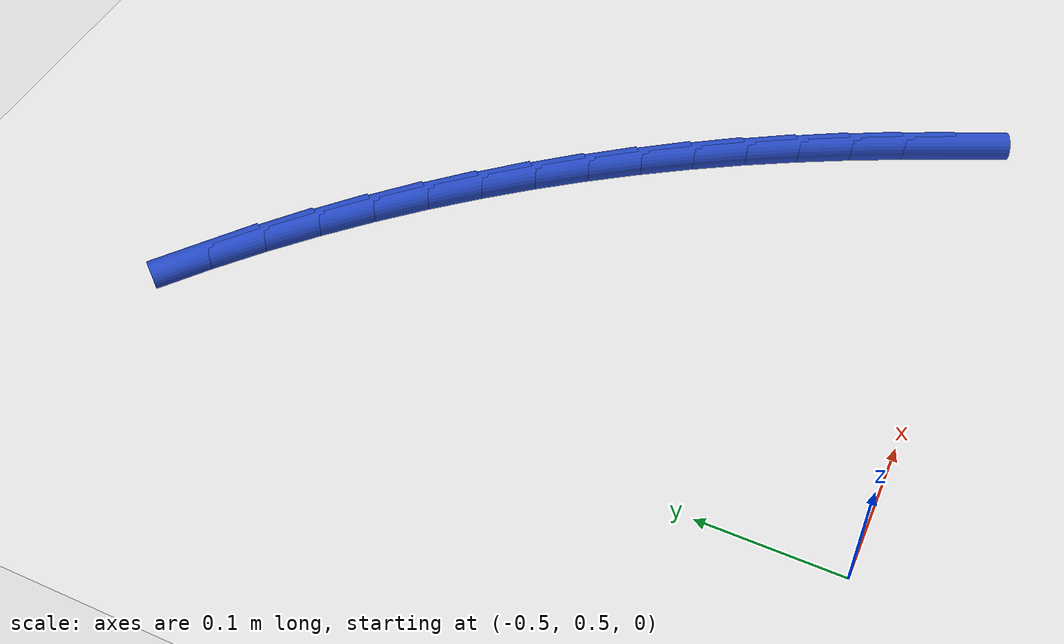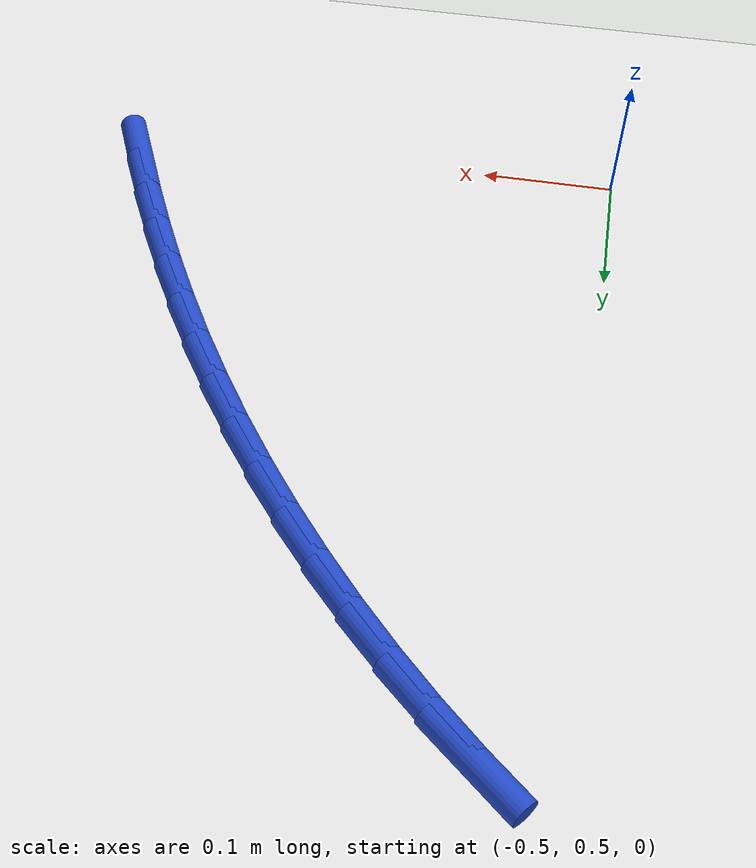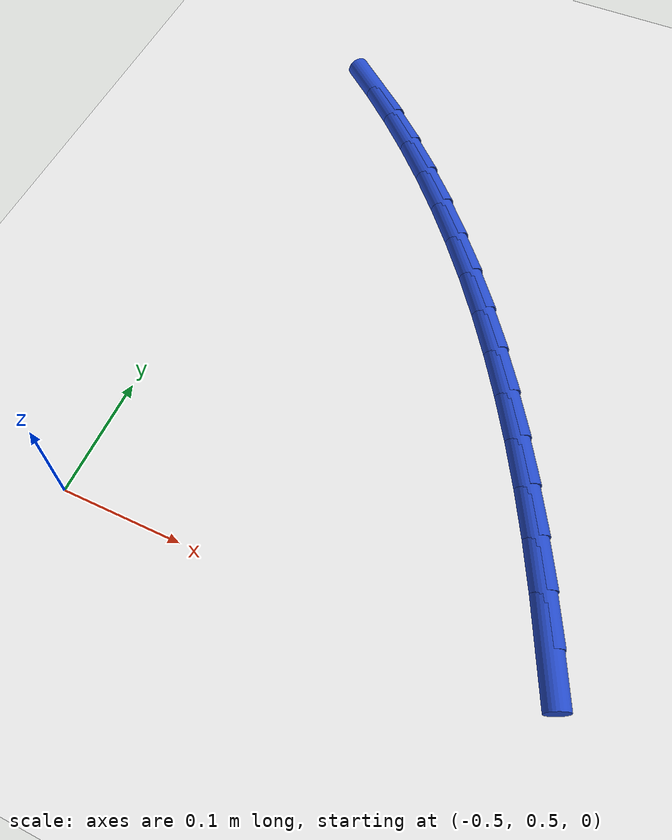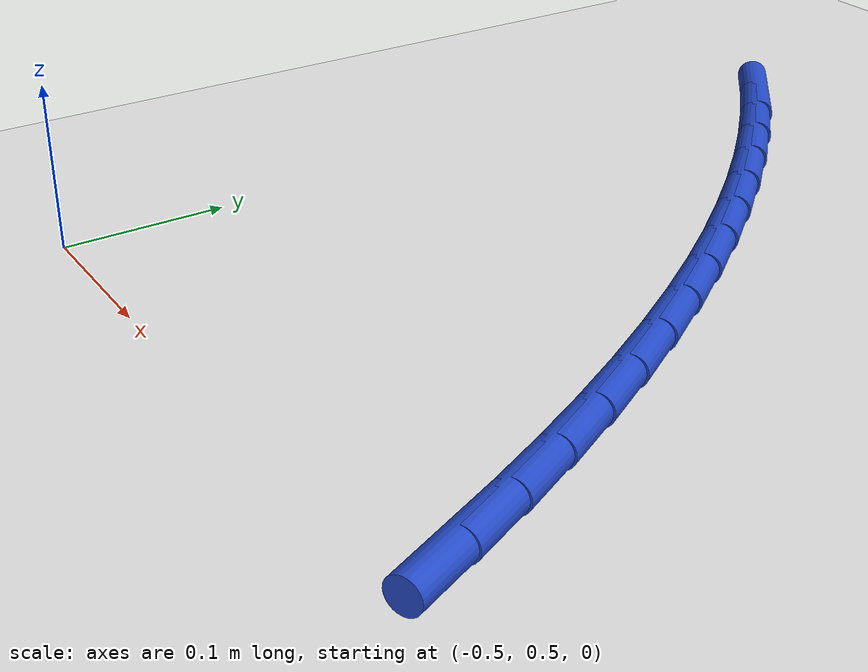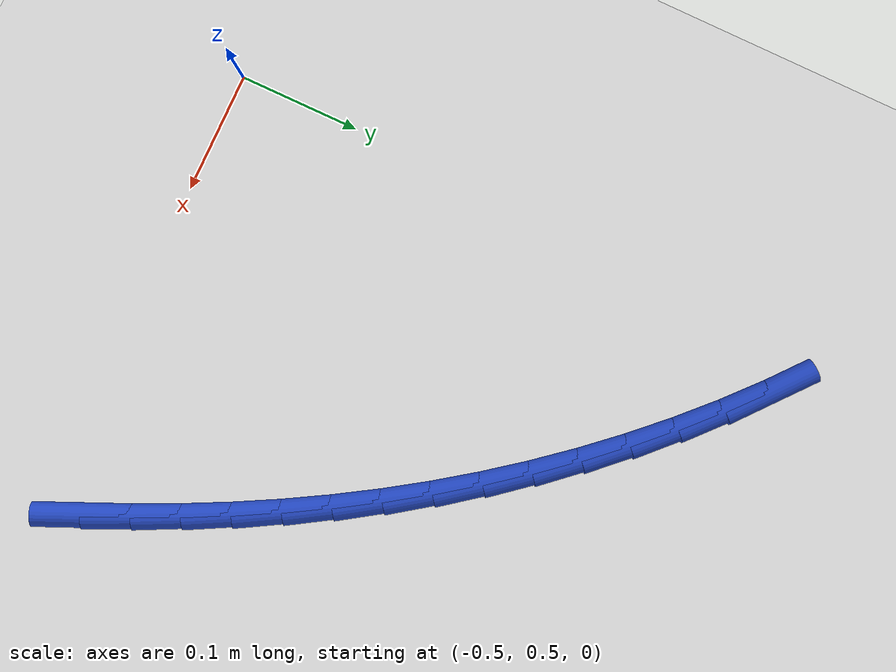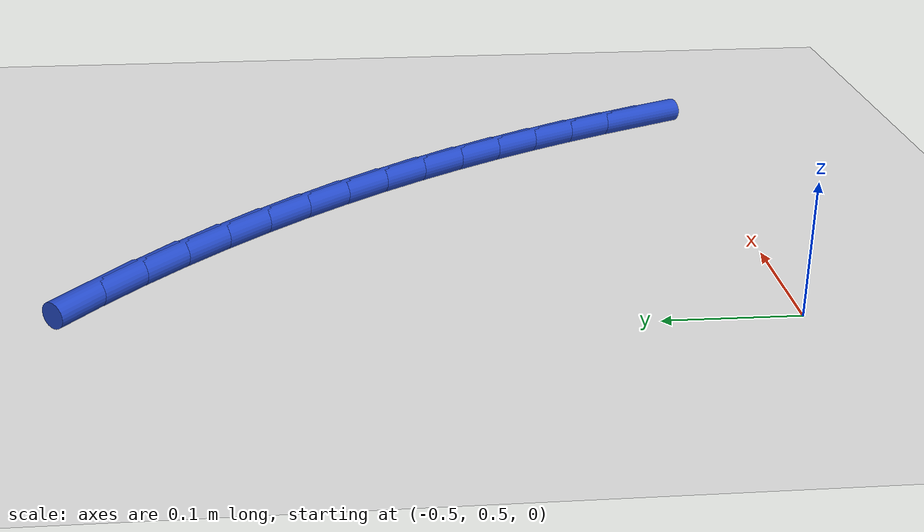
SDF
<sdf version="1.6">
 <world name="default">
  <model name="ground_plane">
   <static>1</static>
   <link name="link">
    <collision name="collision">
     <geometry><plane><normal>0 0 1</normal><size>100 100</size></plane></geometry>
     <surface><friction><ode><mu>100</mu><mu2>50</mu2></ode></friction></surface>
    </collision>
    <visual name="visual">
     <cast_shadows>0</cast_shadows>
     <geometry><plane><normal>0 0 1</normal><size>100 100</size></plane></geometry>
     <material>
      <script><uri>file://media/materials/scripts/gazebo.material</uri><name>Gazebo/WhiteGlow</name></script>
     </material>
    </visual>
   </link>
  </model>
  <model name="line">
   <link name="link_14">
    <pose>-0.129635785110853 0.5358467761259611 0.01 0 1.57 -1.1573363844770337</pose>
    <collision name="collision">
     <geometry><cylinder><radius>0.01</radius><length>0.08</length></cylinder></geometry>
    </collision>
    <visual name="visual">
     <material>
      <script><name>Gazebo/Blue</name><uri>file://media/materials/scripts/gazebo.material</uri></script>
     </material>
     <geometry><cylinder><radius>0.01</radius><length>0.08</length></cylinder></geometry>
    </visual>
   </link>
   <link name="link_15">
    <pose>-0.14553169907659944 0.5720767004782777 0.01 0 1.57 -1.131580869920373</pose>
    <collision name="collision">
     <geometry><cylinder><radius>0.01</radius><length>0.08</length></cylinder></geometry>
    </collision>
    <visual name="visual">
     <material>
      <script><name>Gazebo/Blue</name><uri>file://media/materials/scripts/gazebo.material</uri></script>
     </material>
     <geometry><cylinder><radius>0.01</radius><length>0.08</length></cylinder></geometry>
    </visual>
   </link>
   <link name="link_16">
    <pose>-0.16234818683960264 0.6078699826915804 0.01 0 1.57 -1.10448872242798</pose>
    <collision name="collision">
     <geometry><cylinder><radius>0.01</radius><length>0.08</length></cylinder></geometry>
    </collision>
    <visual name="visual">
     <material>
      <script><name>Gazebo/Blue</name><uri>file://media/materials/scripts/gazebo.material</uri></script>
     </material>
     <geometry><cylinder><radius>0.01</radius><length>0.08</length></cylinder></geometry>
    </visual>
   </link>
   <link name="link_17">
    <pose>-0.18012566941794556 0.6431897583928912 0.01 0 1.57 -1.076067516809016</pose>
    <collision name="collision">
     <geometry><cylinder><radius>0.01</radius><length>0.08</length></cylinder></geometry>
    </collision>
    <visual name="visual">
     <material>
      <script><name>Gazebo/Blue</name><uri>file://media/materials/scripts/gazebo.material</uri></script>
     </material>
     <geometry><cylinder><radius>0.01</radius><length>0.08</length></cylinder></geometry>
    </visual>
   </link>
   <link name="link_18">
    <pose>-0.1989045678297111 0.6779991632092321 0.01 0 1.57 -1.046334147807426</pose>
    <collision name="collision">
     <geometry><cylinder><radius>0.01</radius><length>0.08</length></cylinder></geometry>
    </collision>
    <visual name="visual">
     <material>
      <script><name>Gazebo/Blue</name><uri>file://media/materials/scripts/gazebo.material</uri></script>
     </material>
     <geometry><cylinder><radius>0.01</radius><length>0.08</length></cylinder></geometry>
    </visual>
   </link>
   <link name="link_19">
    <pose>-0.21872530309298194 0.7122613327676243 0.01 0 1.57 -1.0153162345164217</pose>
    <collision name="collision">
     <geometry><cylinder><radius>0.01</radius><length>0.08</length></cylinder></geometry>
    </collision>
    <visual name="visual">
     <material>
      <script><name>Gazebo/Blue</name><uri>file://media/materials/scripts/gazebo.material</uri></script>
     </material>
     <geometry><cylinder><radius>0.01</radius><length>0.08</length></cylinder></geometry>
    </visual>
   </link>
   <link name="link_20">
    <pose>-0.23962829622584125 0.7459394026950906 0.01 0 1.57 -0.9830534292479374</pose>
    <collision name="collision">
     <geometry><cylinder><radius>0.01</radius><length>0.08</length></cylinder></geometry>
    </collision>
    <visual name="visual">
     <material>
      <script><name>Gazebo/Blue</name><uri>file://media/materials/scripts/gazebo.material</uri></script>
     </material>
     <geometry><cylinder><radius>0.01</radius><length>0.08</length></cylinder></geometry>
    </visual>
   </link>
   <link name="link_21">
    <pose>-0.26165396824637155 0.778996508618652 0.01 0 1.57 -0.9496252607574956</pose>
    <collision name="collision">
     <geometry><cylinder><radius>0.01</radius><length>0.08</length></cylinder></geometry>
    </collision>
    <visual name="visual">
     <material>
      <script><name>Gazebo/Blue</name><uri>file://media/materials/scripts/gazebo.material</uri></script>
     </material>
     <geometry><cylinder><radius>0.01</radius><length>0.08</length></cylinder></geometry>
    </visual>
   </link>
   <link name="link_22">
    <pose>-0.2848399504521031 0.8113937166809627 0.01 0 1.57 -0.9154435720531728</pose>
    <collision name="collision">
     <geometry><cylinder><radius>0.01</radius><length>0.08</length></cylinder></geometry>
    </collision>
    <visual name="visual">
     <material>
      <script><name>Gazebo/Blue</name><uri>file://media/materials/scripts/gazebo.material</uri></script>
     </material>
     <geometry><cylinder><radius>0.01</radius><length>0.08</length></cylinder></geometry>
    </visual>
   </link>
   <link name="link_23">
    <pose>-0.30918233513115206 0.8430612783502249 0.01 0 1.57 -0.8806823990476138</pose>
    <collision name="collision">
     <geometry><cylinder><radius>0.01</radius><length>0.08</length></cylinder></geometry>
    </collision>
    <visual name="visual">
     <material>
      <script><name>Gazebo/Blue</name><uri>file://media/materials/scripts/gazebo.material</uri></script>
     </material>
     <geometry><cylinder><radius>0.01</radius><length>0.08</length></cylinder></geometry>
    </visual>
   </link>
   <link name="link_24">
    <pose>-0.33464534150881653 0.8739058008607417 0.01 0 1.57 -0.8451848546975982</pose>
    <collision name="collision">
     <geometry><cylinder><radius>0.01</radius><length>0.08</length></cylinder></geometry>
    </collision>
    <visual name="visual">
     <material>
      <script><name>Gazebo/Blue</name><uri>file://media/materials/scripts/gazebo.material</uri></script>
     </material>
     <geometry><cylinder><radius>0.01</radius><length>0.08</length></cylinder></geometry>
    </visual>
   </link>
   <link name="link_25">
    <pose>-0.36119237489483563 0.9038332876639299 0.01 0 1.57 -0.8087874085351197</pose>
    <collision name="collision">
     <geometry><cylinder><radius>0.01</radius><length>0.08</length></cylinder></geometry>
    </collision>
    <visual name="visual">
     <material>
      <script><name>Gazebo/Blue</name><uri>file://media/materials/scripts/gazebo.material</uri></script>
     </material>
     <geometry><cylinder><radius>0.01</radius><length>0.08</length></cylinder></geometry>
    </visual>
   </link>
   <link name="link_26">
    <pose>-0.388786840598948 0.9327497422112065 0.01 0 1.57 -0.7713274221592068</pose>
    <collision name="collision">
     <geometry><cylinder><radius>0.01</radius><length>0.08</length></cylinder></geometry>
    </collision>
    <visual name="visual">
     <material>
      <script><name>Gazebo/Blue</name><uri>file://media/materials/scripts/gazebo.material</uri></script>
     </material>
     <geometry><cylinder><radius>0.01</radius><length>0.08</length></cylinder></geometry>
    </visual>
   </link>
   <link name="link_27">
    <pose>-0.4173921439308921 0.9605611679539883 0.01 0 1.57 -0.7326434012178132</pose>
    <collision name="collision">
     <geometry><cylinder><radius>0.01</radius><length>0.08</length></cylinder></geometry>
    </collision>
    <visual name="visual">
     <material>
      <script><name>Gazebo/Blue</name><uri>file://media/materials/scripts/gazebo.material</uri></script>
     </material>
     <geometry><cylinder><radius>0.01</radius><length>0.08</length></cylinder></geometry>
    </visual>
   </link>
   <link name="link_28">
    <pose>-0.44697169020040695 0.9871735683436921 0.01 0 1.57 -0.6925758593957346</pose>
    <collision name="collision">
     <geometry><cylinder><radius>0.01</radius><length>0.08</length></cylinder></geometry>
    </collision>
    <visual name="visual">
     <material>
      <script><name>Gazebo/Blue</name><uri>file://media/materials/scripts/gazebo.material</uri></script>
     </material>
     <geometry><cylinder><radius>0.01</radius><length>0.08</length></cylinder></geometry>
    </visual>
   </link>
  </model>
 </world>
</sdf>
